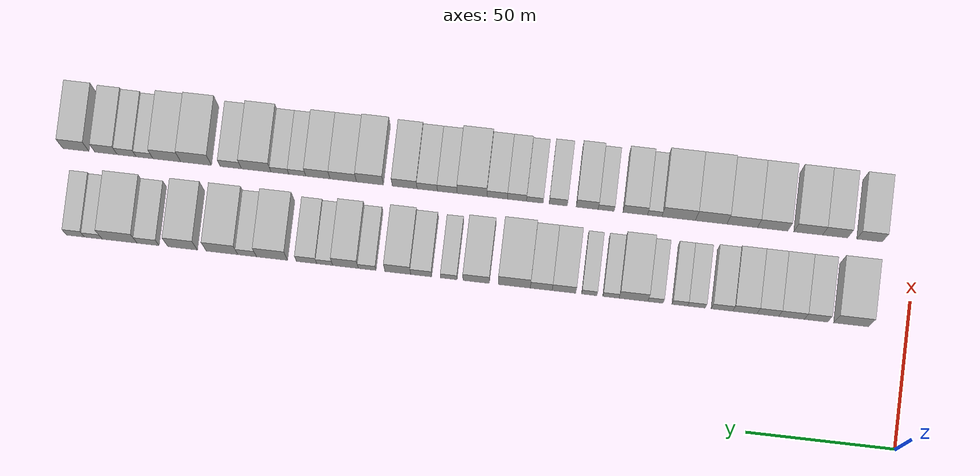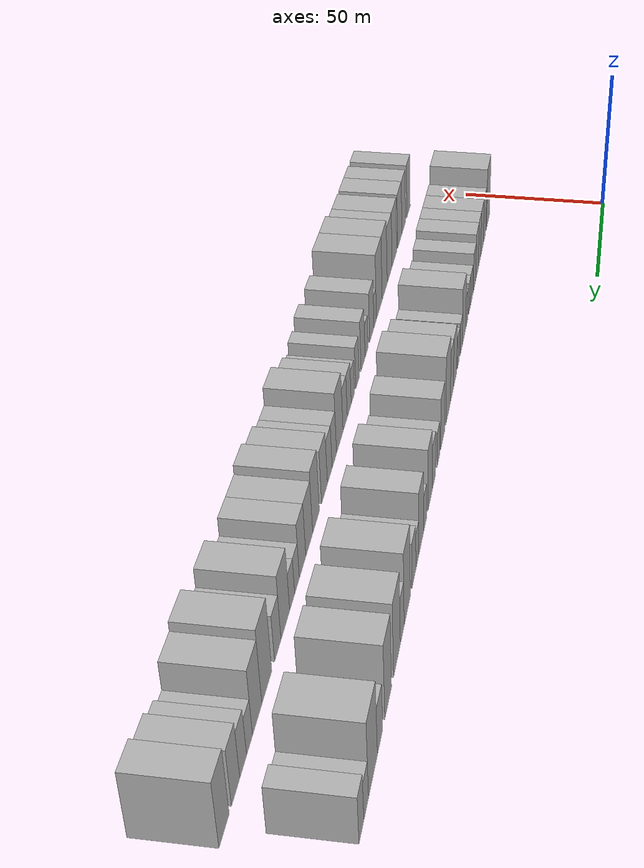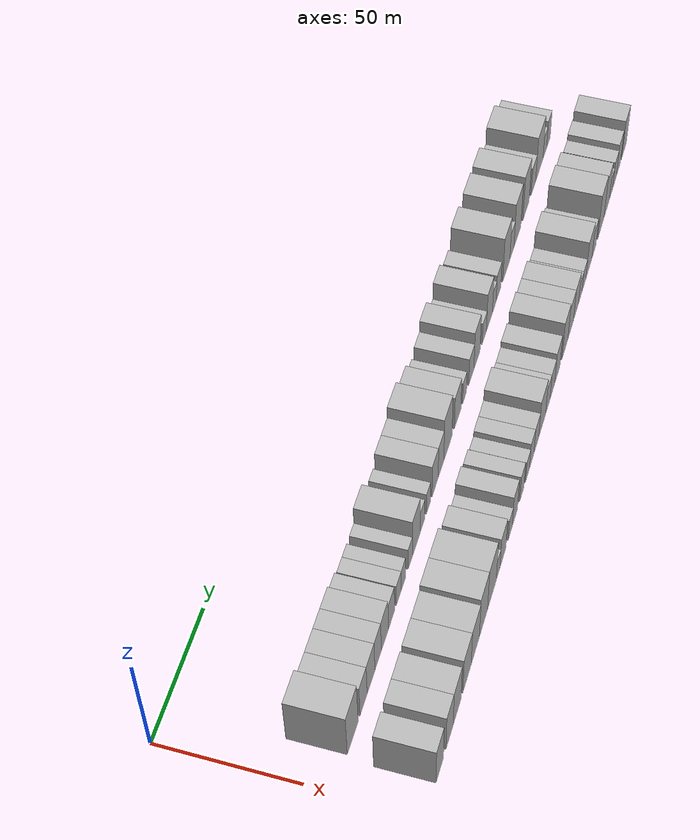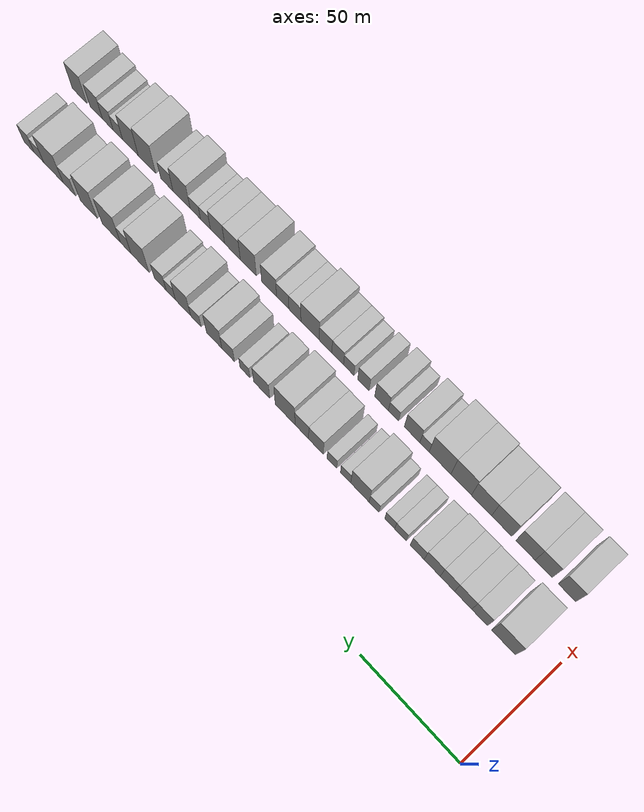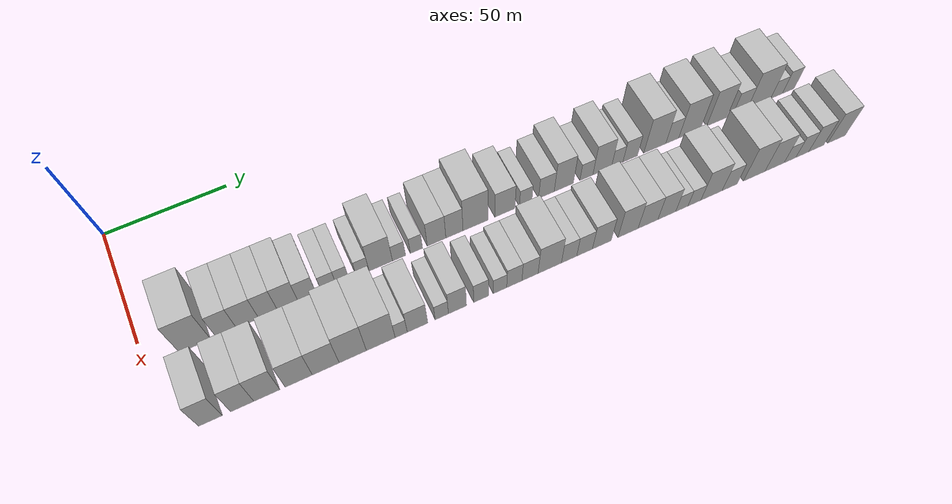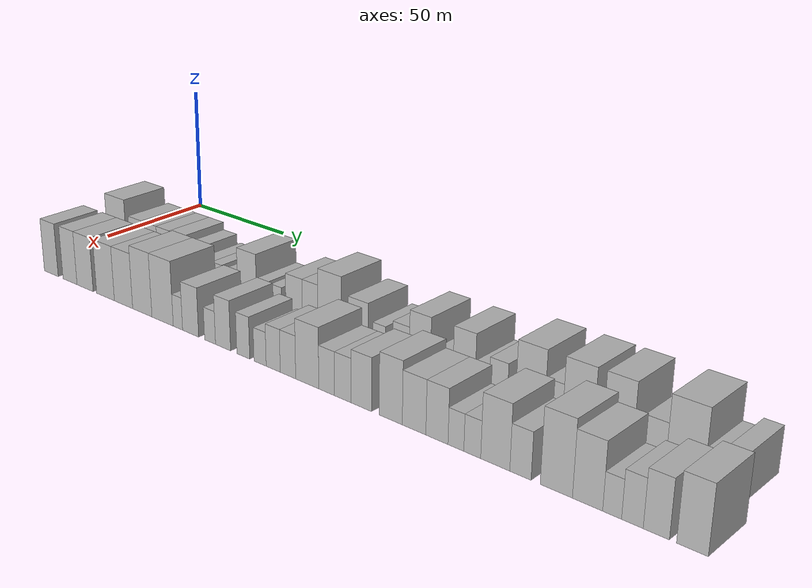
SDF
<sdf version="1.6">
 <world name="default">
  <model name="building_31">
   <static>1</static>
   <pose>50.0000 18.8961 0 0.000000 0.000000 0.000000</pose>
   <link name="link">
    <pose>0 0 12.00 0 0 0</pose>
    <collision name="collision"><geometry><box><size>20.0000 11.7647 24.0000</size></box></geometry></collision>
    <visual name="visual">
     <cast_shadows>0</cast_shadows>
     <geometry><box><size>20.0000 11.7647 24.0000</size></box></geometry>
     <material>
      <script>
       <uri>model://HANNAS_wall/materials/scripts</uri>
       <uri>model://HANNAS_wall/materials/textures</uri>
       <name>vrc/HANNAS_wall</name>
      </script>
     </material>
    </visual>
   </link>
  </model>
  <model name="building_32">
   <static>1</static>
   <pose>50.0000 30.7155 0 0.000000 0.000000 0.000000</pose>
   <link name="link">
    <pose>0 0 9.00 0 0 0</pose>
    <collision name="collision"><geometry><box><size>20.0000 7.8740 18.0000</size></box></geometry></collision>
    <visual name="visual">
     <cast_shadows>0</cast_shadows>
     <geometry><box><size>20.0000 7.8740 18.0000</size></box></geometry>
     <material>
      <script>
       <uri>model://HANNAS_wall/materials/scripts</uri>
       <uri>model://HANNAS_wall/materials/textures</uri>
       <name>vrc/HANNAS_wall</name>
      </script>
     </material>
    </visual>
   </link>
  </model>
  <model name="building_33">
   <static>1</static>
   <pose>50.0000 38.9766 0 0.000000 0.000000 0.000000</pose>
   <link name="link">
    <pose>0 0 9.00 0 0 0</pose>
    <collision name="collision"><geometry><box><size>20.0000 8.6483 18.0000</size></box></geometry></collision>
    <visual name="visual">
     <cast_shadows>0</cast_shadows>
     <geometry><box><size>20.0000 8.6483 18.0000</size></box></geometry>
     <material>
      <script>
       <uri>model://HANNAS_wall/materials/scripts</uri>
       <uri>model://HANNAS_wall/materials/textures</uri>
       <name>vrc/HANNAS_wall</name>
      </script>
     </material>
    </visual>
   </link>
  </model>
  <model name="building_34">
   <static>1</static>
   <pose>50.0000 46.9792 0 0.000000 0.000000 0.000000</pose>
   <link name="link">
    <pose>0 0 9.00 0 0 0</pose>
    <collision name="collision"><geometry><box><size>20.0000 7.3569 18.0000</size></box></geometry></collision>
    <visual name="visual">
     <cast_shadows>0</cast_shadows>
     <geometry><box><size>20.0000 7.3569 18.0000</size></box></geometry>
     <material>
      <script>
       <uri>model://HANNAS_wall/materials/scripts</uri>
       <uri>model://HANNAS_wall/materials/textures</uri>
       <name>vrc/HANNAS_wall</name>
      </script>
     </material>
    </visual>
   </link>
  </model>
  <model name="building_35">
   <static>1</static>
   <pose>50.0000 54.7420 0 0.000000 0.000000 0.000000</pose>
   <link name="link">
    <pose>0 0 9.00 0 0 0</pose>
    <collision name="collision"><geometry><box><size>20.0000 8.1687 18.0000</size></box></geometry></collision>
    <visual name="visual">
     <cast_shadows>0</cast_shadows>
     <geometry><box><size>20.0000 8.1687 18.0000</size></box></geometry>
     <material>
      <script>
       <uri>model://HANNAS_wall/materials/scripts</uri>
       <uri>model://HANNAS_wall/materials/textures</uri>
       <name>vrc/HANNAS_wall</name>
      </script>
     </material>
    </visual>
   </link>
  </model>
  <model name="building_36">
   <static>1</static>
   <pose>50.0000 62.4307 0 0.000000 0.000000 0.000000</pose>
   <link name="link">
    <pose>0 0 7.50 0 0 0</pose>
    <collision name="collision"><geometry><box><size>20.0000 7.2087 15.0000</size></box></geometry></collision>
    <visual name="visual">
     <cast_shadows>0</cast_shadows>
     <geometry><box><size>20.0000 7.2087 15.0000</size></box></geometry>
     <material>
      <script>
       <uri>model://HANNAS_wall/materials/scripts</uri>
       <uri>model://HANNAS_wall/materials/textures</uri>
       <name>vrc/HANNAS_wall</name>
      </script>
     </material>
    </visual>
   </link>
  </model>
  <model name="building_37">
   <static>1</static>
   <pose>50.0000 71.0295 0 0.000000 0.000000 0.000000</pose>
   <link name="link">
    <pose>0 0 6.00 0 0 0</pose>
    <collision name="collision"><geometry><box><size>20.0000 5.9889 12.0000</size></box></geometry></collision>
    <visual name="visual">
     <cast_shadows>0</cast_shadows>
     <geometry><box><size>20.0000 5.9889 12.0000</size></box></geometry>
     <material>
      <script>
       <uri>model://HANNAS_wall/materials/scripts</uri>
       <uri>model://HANNAS_wall/materials/textures</uri>
       <name>vrc/HANNAS_wall</name>
      </script>
     </material>
    </visual>
   </link>
  </model>
  <model name="building_38">
   <static>1</static>
   <pose>50.0000 76.6315 0 0.000000 0.000000 0.000000</pose>
   <link name="link">
    <pose>0 0 6.00 0 0 0</pose>
    <collision name="collision"><geometry><box><size>20.0000 5.2150 12.0000</size></box></geometry></collision>
    <visual name="visual">
     <cast_shadows>0</cast_shadows>
     <geometry><box><size>20.0000 5.2150 12.0000</size></box></geometry>
     <material>
      <script>
       <uri>model://HANNAS_wall/materials/scripts</uri>
       <uri>model://HANNAS_wall/materials/textures</uri>
       <name>vrc/HANNAS_wall</name>
      </script>
     </material>
    </visual>
   </link>
  </model>
  <model name="building_39">
   <static>1</static>
   <pose>50.0000 84.8282 0 0.000000 0.000000 0.000000</pose>
   <link name="link">
    <pose>0 0 6.00 0 0 0</pose>
    <collision name="collision"><geometry><box><size>20.0000 5.1785 12.0000</size></box></geometry></collision>
    <visual name="visual">
     <cast_shadows>0</cast_shadows>
     <geometry><box><size>20.0000 5.1785 12.0000</size></box></geometry>
     <material>
      <script>
       <uri>model://HANNAS_wall/materials/scripts</uri>
       <uri>model://HANNAS_wall/materials/textures</uri>
       <name>vrc/HANNAS_wall</name>
      </script>
     </material>
    </visual>
   </link>
  </model>
  <model name="building_40">
   <static>1</static>
   <pose>50.0000 92.2468 0 0.000000 0.000000 0.000000</pose>
   <link name="link">
    <pose>0 0 10.50 0 0 0</pose>
    <collision name="collision"><geometry><box><size>20.0000 9.6588 21.0000</size></box></geometry></collision>
    <visual name="visual">
     <cast_shadows>0</cast_shadows>
     <geometry><box><size>20.0000 9.6588 21.0000</size></box></geometry>
     <material>
      <script>
       <uri>model://HANNAS_wall/materials/scripts</uri>
       <uri>model://HANNAS_wall/materials/textures</uri>
       <name>vrc/HANNAS_wall</name>
      </script>
     </material>
    </visual>
   </link>
  </model>
  <model name="building_41">
   <static>1</static>
   <pose>50.0000 99.8060 0 0.000000 0.000000 0.000000</pose>
   <link name="link">
    <pose>0 0 6.00 0 0 0</pose>
    <collision name="collision"><geometry><box><size>20.0000 5.4595 12.0000</size></box></geometry></collision>
    <visual name="visual">
     <cast_shadows>0</cast_shadows>
     <geometry><box><size>20.0000 5.4595 12.0000</size></box></geometry>
     <material>
      <script>
       <uri>model://HANNAS_wall/materials/scripts</uri>
       <uri>model://HANNAS_wall/materials/textures</uri>
       <name>vrc/HANNAS_wall</name>
      </script>
     </material>
    </visual>
   </link>
  </model>
  <model name="building_42">
   <static>1</static>
   <pose>50.0000 107.1023 0 0.000000 0.000000 0.000000</pose>
   <link name="link">
    <pose>0 0 6.00 0 0 0</pose>
    <collision name="collision"><geometry><box><size>20.0000 5.1331 12.0000</size></box></geometry></collision>
    <visual name="visual">
     <cast_shadows>0</cast_shadows>
     <geometry><box><size>20.0000 5.1331 12.0000</size></box></geometry>
     <material>
      <script>
       <uri>model://HANNAS_wall/materials/scripts</uri>
       <uri>model://HANNAS_wall/materials/textures</uri>
       <name>vrc/HANNAS_wall</name>
      </script>
     </material>
    </visual>
   </link>
  </model>
  <model name="building_43">
   <static>1</static>
   <pose>50.0000 115.6307 0 0.000000 0.000000 0.000000</pose>
   <link name="link">
    <pose>0 0 9.00 0 0 0</pose>
    <collision name="collision"><geometry><box><size>20.0000 7.9236 18.0000</size></box></geometry></collision>
    <visual name="visual">
     <cast_shadows>0</cast_shadows>
     <geometry><box><size>20.0000 7.9236 18.0000</size></box></geometry>
     <material>
      <script>
       <uri>model://HANNAS_wall/materials/scripts</uri>
       <uri>model://HANNAS_wall/materials/textures</uri>
       <name>vrc/HANNAS_wall</name>
      </script>
     </material>
    </visual>
   </link>
  </model>
  <model name="building_44">
   <static>1</static>
   <pose>50.0000 123.2688 0 0.000000 0.000000 0.000000</pose>
   <link name="link">
    <pose>0 0 9.00 0 0 0</pose>
    <collision name="collision"><geometry><box><size>20.0000 7.3525 18.0000</size></box></geometry></collision>
    <visual name="visual">
     <cast_shadows>0</cast_shadows>
     <geometry><box><size>20.0000 7.3525 18.0000</size></box></geometry>
     <material>
      <script>
       <uri>model://HANNAS_wall/materials/scripts</uri>
       <uri>model://HANNAS_wall/materials/textures</uri>
       <name>vrc/HANNAS_wall</name>
      </script>
     </material>
    </visual>
   </link>
  </model>
  <model name="building_45">
   <static>1</static>
   <pose>50.0000 132.3559 0 0.000000 0.000000 0.000000</pose>
   <link name="link">
    <pose>0 0 12.00 0 0 0</pose>
    <collision name="collision"><geometry><box><size>20.0000 10.8218 24.0000</size></box></geometry></collision>
    <visual name="visual">
     <cast_shadows>0</cast_shadows>
     <geometry><box><size>20.0000 10.8218 24.0000</size></box></geometry>
     <material>
      <script>
       <uri>model://HANNAS_wall/materials/scripts</uri>
       <uri>model://HANNAS_wall/materials/textures</uri>
       <name>vrc/HANNAS_wall</name>
      </script>
     </material>
    </visual>
   </link>
  </model>
  <model name="building_46">
   <static>1</static>
   <pose>50.0000 145.2067 0 0.000000 0.000000 0.000000</pose>
   <link name="link">
    <pose>0 0 9.00 0 0 0</pose>
    <collision name="collision"><geometry><box><size>20.0000 8.8799 18.0000</size></box></geometry></collision>
    <visual name="visual">
     <cast_shadows>0</cast_shadows>
     <geometry><box><size>20.0000 8.8799 18.0000</size></box></geometry>
     <material>
      <script>
       <uri>model://HANNAS_wall/materials/scripts</uri>
       <uri>model://HANNAS_wall/materials/textures</uri>
       <name>vrc/HANNAS_wall</name>
      </script>
     </material>
    </visual>
   </link>
  </model>
  <model name="building_47">
   <static>1</static>
   <pose>50.0000 154.4307 0 0.000000 0.000000 0.000000</pose>
   <link name="link">
    <pose>0 0 6.00 0 0 0</pose>
    <collision name="collision"><geometry><box><size>20.0000 5.5680 12.0000</size></box></geometry></collision>
    <visual name="visual">
     <cast_shadows>0</cast_shadows>
     <geometry><box><size>20.0000 5.5680 12.0000</size></box></geometry>
     <material>
      <script>
       <uri>model://HANNAS_wall/materials/scripts</uri>
       <uri>model://HANNAS_wall/materials/textures</uri>
       <name>vrc/HANNAS_wall</name>
      </script>
     </material>
    </visual>
   </link>
  </model>
  <model name="building_48">
   <static>1</static>
   <pose>50.0000 163.7474 0 0.000000 0.000000 0.000000</pose>
   <link name="link">
    <pose>0 0 7.50 0 0 0</pose>
    <collision name="collision"><geometry><box><size>20.0000 7.0654 15.0000</size></box></geometry></collision>
    <visual name="visual">
     <cast_shadows>0</cast_shadows>
     <geometry><box><size>20.0000 7.0654 15.0000</size></box></geometry>
     <material>
      <script>
       <uri>model://HANNAS_wall/materials/scripts</uri>
       <uri>model://HANNAS_wall/materials/textures</uri>
       <name>vrc/HANNAS_wall</name>
      </script>
     </material>
    </visual>
   </link>
  </model>
  <model name="building_49">
   <static>1</static>
   <pose>50.0000 171.6320 0 0.000000 0.000000 0.000000</pose>
   <link name="link">
    <pose>0 0 10.50 0 0 0</pose>
    <collision name="collision"><geometry><box><size>20.0000 8.7038 21.0000</size></box></geometry></collision>
    <visual name="visual">
     <cast_shadows>0</cast_shadows>
     <geometry><box><size>20.0000 8.7038 21.0000</size></box></geometry>
     <material>
      <script>
       <uri>model://HANNAS_wall/materials/scripts</uri>
       <uri>model://HANNAS_wall/materials/textures</uri>
       <name>vrc/HANNAS_wall</name>
      </script>
     </material>
    </visual>
   </link>
  </model>
  <model name="building_50">
   <static>1</static>
   <pose>50.0000 181.9713 0 0.000000 0.000000 0.000000</pose>
   <link name="link">
    <pose>0 0 6.00 0 0 0</pose>
    <collision name="collision"><geometry><box><size>20.0000 5.9748 12.0000</size></box></geometry></collision>
    <visual name="visual">
     <cast_shadows>0</cast_shadows>
     <geometry><box><size>20.0000 5.9748 12.0000</size></box></geometry>
     <material>
      <script>
       <uri>model://HANNAS_wall/materials/scripts</uri>
       <uri>model://HANNAS_wall/materials/textures</uri>
       <name>vrc/HANNAS_wall</name>
      </script>
     </material>
    </visual>
   </link>
  </model>
  <model name="building_51">
   <static>1</static>
   <pose>50.0000 189.2815 0 0.000000 0.000000 0.000000</pose>
   <link name="link">
    <pose>0 0 10.50 0 0 0</pose>
    <collision name="collision"><geometry><box><size>20.0000 8.6455 21.0000</size></box></geometry></collision>
    <visual name="visual">
     <cast_shadows>0</cast_shadows>
     <geometry><box><size>20.0000 8.6455 21.0000</size></box></geometry>
     <material>
      <script>
       <uri>model://HANNAS_wall/materials/scripts</uri>
       <uri>model://HANNAS_wall/materials/textures</uri>
       <name>vrc/HANNAS_wall</name>
      </script>
     </material>
    </visual>
   </link>
  </model>
  <model name="building_52">
   <static>1</static>
   <pose>50.0000 196.2893 0 0.000000 0.000000 0.000000</pose>
   <link name="link">
    <pose>0 0 6.00 0 0 0</pose>
    <collision name="collision"><geometry><box><size>20.0000 5.3701 12.0000</size></box></geometry></collision>
    <visual name="visual">
     <cast_shadows>0</cast_shadows>
     <geometry><box><size>20.0000 5.3701 12.0000</size></box></geometry>
     <material>
      <script>
       <uri>model://HANNAS_wall/materials/scripts</uri>
       <uri>model://HANNAS_wall/materials/textures</uri>
       <name>vrc/HANNAS_wall</name>
      </script>
     </material>
    </visual>
   </link>
  </model>
  <model name="building_53">
   <static>1</static>
   <pose>50.0000 202.4150 0 0.000000 0.000000 0.000000</pose>
   <link name="link">
    <pose>0 0 7.50 0 0 0</pose>
    <collision name="collision"><geometry><box><size>20.0000 6.8814 15.0000</size></box></geometry></collision>
    <visual name="visual">
     <cast_shadows>0</cast_shadows>
     <geometry><box><size>20.0000 6.8814 15.0000</size></box></geometry>
     <material>
      <script>
       <uri>model://HANNAS_wall/materials/scripts</uri>
       <uri>model://HANNAS_wall/materials/textures</uri>
       <name>vrc/HANNAS_wall</name>
      </script>
     </material>
    </visual>
   </link>
  </model>
  <model name="building_54">
   <static>1</static>
   <pose>50.0000 214.1034 0 0.000000 0.000000 0.000000</pose>
   <link name="link">
    <pose>0 0 12.00 0 0 0</pose>
    <collision name="collision"><geometry><box><size>20.0000 10.4953 24.0000</size></box></geometry></collision>
    <visual name="visual">
     <cast_shadows>0</cast_shadows>
     <geometry><box><size>20.0000 10.4953 24.0000</size></box></geometry>
     <material>
      <script>
       <uri>model://HANNAS_wall/materials/scripts</uri>
       <uri>model://HANNAS_wall/materials/textures</uri>
       <name>vrc/HANNAS_wall</name>
      </script>
     </material>
    </visual>
   </link>
  </model>
  <model name="building_55">
   <static>1</static>
   <pose>50.0000 222.4942 0 0.000000 0.000000 0.000000</pose>
   <link name="link">
    <pose>0 0 7.50 0 0 0</pose>
    <collision name="collision"><geometry><box><size>20.0000 6.2863 15.0000</size></box></geometry></collision>
    <visual name="visual">
     <cast_shadows>0</cast_shadows>
     <geometry><box><size>20.0000 6.2863 15.0000</size></box></geometry>
     <material>
      <script>
       <uri>model://HANNAS_wall/materials/scripts</uri>
       <uri>model://HANNAS_wall/materials/textures</uri>
       <name>vrc/HANNAS_wall</name>
      </script>
     </material>
    </visual>
   </link>
  </model>
  <model name="building_56">
   <static>1</static>
   <pose>50.0000 230.9816 0 0.000000 0.000000 0.000000</pose>
   <link name="link">
    <pose>0 0 12.00 0 0 0</pose>
    <collision name="collision"><geometry><box><size>20.0000 10.6886 24.0000</size></box></geometry></collision>
    <visual name="visual">
     <cast_shadows>0</cast_shadows>
     <geometry><box><size>20.0000 10.6886 24.0000</size></box></geometry>
     <material>
      <script>
       <uri>model://HANNAS_wall/materials/scripts</uri>
       <uri>model://HANNAS_wall/materials/textures</uri>
       <name>vrc/HANNAS_wall</name>
      </script>
     </material>
    </visual>
   </link>
  </model>
  <model name="building_57">
   <static>1</static>
   <pose>50.0000 244.2992 0 0.000000 0.000000 0.000000</pose>
   <link name="link">
    <pose>0 0 12.00 0 0 0</pose>
    <collision name="collision"><geometry><box><size>20.0000 9.9465 24.0000</size></box></geometry></collision>
    <visual name="visual">
     <cast_shadows>0</cast_shadows>
     <geometry><box><size>20.0000 9.9465 24.0000</size></box></geometry>
     <material>
      <script>
       <uri>model://HANNAS_wall/materials/scripts</uri>
       <uri>model://HANNAS_wall/materials/textures</uri>
       <name>vrc/HANNAS_wall</name>
      </script>
     </material>
    </visual>
   </link>
  </model>
  <model name="building_58">
   <static>1</static>
   <pose>50.0000 255.9899 0 0.000000 0.000000 0.000000</pose>
   <link name="link">
    <pose>0 0 7.50 0 0 0</pose>
    <collision name="collision"><geometry><box><size>20.0000 7.4349 15.0000</size></box></geometry></collision>
    <visual name="visual">
     <cast_shadows>0</cast_shadows>
     <geometry><box><size>20.0000 7.4349 15.0000</size></box></geometry>
     <material>
      <script>
       <uri>model://HANNAS_wall/materials/scripts</uri>
       <uri>model://HANNAS_wall/materials/textures</uri>
       <name>vrc/HANNAS_wall</name>
      </script>
     </material>
    </visual>
   </link>
  </model>
  <model name="building_59">
   <static>1</static>
   <pose>50.0000 265.6036 0 0.000000 0.000000 0.000000</pose>
   <link name="link">
    <pose>0 0 12.00 0 0 0</pose>
    <collision name="collision"><geometry><box><size>20.0000 11.7926 24.0000</size></box></geometry></collision>
    <visual name="visual">
     <cast_shadows>0</cast_shadows>
     <geometry><box><size>20.0000 11.7926 24.0000</size></box></geometry>
     <material>
      <script>
       <uri>model://HANNAS_wall/materials/scripts</uri>
       <uri>model://HANNAS_wall/materials/textures</uri>
       <name>vrc/HANNAS_wall</name>
      </script>
     </material>
    </visual>
   </link>
  </model>
  <model name="building_60">
   <static>1</static>
   <pose>50.0000 274.4767 0 0.000000 0.000000 0.000000</pose>
   <link name="link">
    <pose>0 0 6.00 0 0 0</pose>
    <collision name="collision"><geometry><box><size>20.0000 5.9538 12.0000</size></box></geometry></collision>
    <visual name="visual">
     <cast_shadows>0</cast_shadows>
     <geometry><box><size>20.0000 5.9538 12.0000</size></box></geometry>
     <material>
      <script>
       <uri>model://HANNAS_wall/materials/scripts</uri>
       <uri>model://HANNAS_wall/materials/textures</uri>
       <name>vrc/HANNAS_wall</name>
      </script>
     </material>
    </visual>
   </link>
  </model>
  <model name="building_61">
   <static>1</static>
   <pose>50.0000 280.4903 0 0.000000 0.000000 0.000000</pose>
   <link name="link">
    <pose>0 0 7.50 0 0 0</pose>
    <collision name="collision"><geometry><box><size>20.0000 6.0734 15.0000</size></box></geometry></collision>
    <visual name="visual">
     <cast_shadows>0</cast_shadows>
     <geometry><box><size>20.0000 6.0734 15.0000</size></box></geometry>
     <material>
      <script>
       <uri>model://HANNAS_wall/materials/scripts</uri>
       <uri>model://HANNAS_wall/materials/textures</uri>
       <name>vrc/HANNAS_wall</name>
      </script>
     </material>
    </visual>
   </link>
  </model>
  <model name="building_95">
   <static>1</static>
   <pose>79.0000 15.6666 0 0.000000 0.000000 0.000000</pose>
   <link name="link">
    <pose>0 0 10.50 0 0 0</pose>
    <collision name="collision"><geometry><box><size>20.0000 8.6637 21.0000</size></box></geometry></collision>
    <visual name="visual">
     <cast_shadows>0</cast_shadows>
     <geometry><box><size>20.0000 8.6637 21.0000</size></box></geometry>
     <material>
      <script>
       <uri>model://HANNAS_wall/materials/scripts</uri>
       <uri>model://HANNAS_wall/materials/textures</uri>
       <name>vrc/HANNAS_wall</name>
      </script>
     </material>
    </visual>
   </link>
  </model>
  <model name="building_96">
   <static>1</static>
   <pose>79.0000 27.2757 0 0.000000 0.000000 0.000000</pose>
   <link name="link">
    <pose>0 0 10.50 0 0 0</pose>
    <collision name="collision"><geometry><box><size>20.0000 8.5546 21.0000</size></box></geometry></collision>
    <visual name="visual">
     <cast_shadows>0</cast_shadows>
     <geometry><box><size>20.0000 8.5546 21.0000</size></box></geometry>
     <material>
      <script>
       <uri>model://HANNAS_wall/materials/scripts</uri>
       <uri>model://HANNAS_wall/materials/textures</uri>
       <name>vrc/HANNAS_wall</name>
      </script>
     </material>
    </visual>
   </link>
  </model>
  <model name="building_97">
   <static>1</static>
   <pose>79.0000 36.4066 0 0.000000 0.000000 0.000000</pose>
   <link name="link">
    <pose>0 0 10.50 0 0 0</pose>
    <collision name="collision"><geometry><box><size>20.0000 9.7072 21.0000</size></box></geometry></collision>
    <visual name="visual">
     <cast_shadows>0</cast_shadows>
     <geometry><box><size>20.0000 9.7072 21.0000</size></box></geometry>
     <material>
      <script>
       <uri>model://HANNAS_wall/materials/scripts</uri>
       <uri>model://HANNAS_wall/materials/textures</uri>
       <name>vrc/HANNAS_wall</name>
      </script>
     </material>
    </visual>
   </link>
  </model>
  <model name="building_98">
   <static>1</static>
   <pose>79.0000 48.4131 0 0.000000 0.000000 0.000000</pose>
   <link name="link">
    <pose>0 0 10.50 0 0 0</pose>
    <collision name="collision"><geometry><box><size>20.0000 10.3059 21.0000</size></box></geometry></collision>
    <visual name="visual">
     <cast_shadows>0</cast_shadows>
     <geometry><box><size>20.0000 10.3059 21.0000</size></box></geometry>
     <material>
      <script>
       <uri>model://HANNAS_wall/materials/scripts</uri>
       <uri>model://HANNAS_wall/materials/textures</uri>
       <name>vrc/HANNAS_wall</name>
      </script>
     </material>
    </visual>
   </link>
  </model>
  <model name="building_99">
   <static>1</static>
   <pose>79.0000 58.7297 0 0.000000 0.000000 0.000000</pose>
   <link name="link">
    <pose>0 0 10.50 0 0 0</pose>
    <collision name="collision"><geometry><box><size>20.0000 10.3273 21.0000</size></box></geometry></collision>
    <visual name="visual">
     <cast_shadows>0</cast_shadows>
     <geometry><box><size>20.0000 10.3273 21.0000</size></box></geometry>
     <material>
      <script>
       <uri>model://HANNAS_wall/materials/scripts</uri>
       <uri>model://HANNAS_wall/materials/textures</uri>
       <name>vrc/HANNAS_wall</name>
      </script>
     </material>
    </visual>
   </link>
  </model>
  <model name="building_100">
   <static>1</static>
   <pose>79.0000 69.1917 0 0.000000 0.000000 0.000000</pose>
   <link name="link">
    <pose>0 0 12.00 0 0 0</pose>
    <collision name="collision"><geometry><box><size>20.0000 10.5965 24.0000</size></box></geometry></collision>
    <visual name="visual">
     <cast_shadows>0</cast_shadows>
     <geometry><box><size>20.0000 10.5965 24.0000</size></box></geometry>
     <material>
      <script>
       <uri>model://HANNAS_wall/materials/scripts</uri>
       <uri>model://HANNAS_wall/materials/textures</uri>
       <name>vrc/HANNAS_wall</name>
      </script>
     </material>
    </visual>
   </link>
  </model>
  <model name="building_101">
   <static>1</static>
   <pose>79.0000 80.1733 0 0.000000 0.000000 0.000000</pose>
   <link name="link">
    <pose>0 0 12.00 0 0 0</pose>
    <collision name="collision"><geometry><box><size>20.0000 11.3667 24.0000</size></box></geometry></collision>
    <visual name="visual">
     <cast_shadows>0</cast_shadows>
     <geometry><box><size>20.0000 11.3667 24.0000</size></box></geometry>
     <material>
      <script>
       <uri>model://HANNAS_wall/materials/scripts</uri>
       <uri>model://HANNAS_wall/materials/textures</uri>
       <name>vrc/HANNAS_wall</name>
      </script>
     </material>
    </visual>
   </link>
  </model>
  <model name="building_102">
   <static>1</static>
   <pose>79.0000 88.2821 0 0.000000 0.000000 0.000000</pose>
   <link name="link">
    <pose>0 0 6.00 0 0 0</pose>
    <collision name="collision"><geometry><box><size>20.0000 4.8510 12.0000</size></box></geometry></collision>
    <visual name="visual">
     <cast_shadows>0</cast_shadows>
     <geometry><box><size>20.0000 4.8510 12.0000</size></box></geometry>
     <material>
      <script>
       <uri>model://HANNAS_wall/materials/scripts</uri>
       <uri>model://HANNAS_wall/materials/textures</uri>
       <name>vrc/HANNAS_wall</name>
      </script>
     </material>
    </visual>
   </link>
  </model>
  <model name="building_103">
   <static>1</static>
   <pose>79.0000 94.8249 0 0.000000 0.000000 0.000000</pose>
   <link name="link">
    <pose>0 0 9.00 0 0 0</pose>
    <collision name="collision"><geometry><box><size>20.0000 8.2346 18.0000</size></box></geometry></collision>
    <visual name="visual">
     <cast_shadows>0</cast_shadows>
     <geometry><box><size>20.0000 8.2346 18.0000</size></box></geometry>
     <material>
      <script>
       <uri>model://HANNAS_wall/materials/scripts</uri>
       <uri>model://HANNAS_wall/materials/textures</uri>
       <name>vrc/HANNAS_wall</name>
      </script>
     </material>
    </visual>
   </link>
  </model>
  <model name="building_104">
   <static>1</static>
   <pose>79.0000 104.6497 0 0.000000 0.000000 0.000000</pose>
   <link name="link">
    <pose>0 0 6.00 0 0 0</pose>
    <collision name="collision"><geometry><box><size>20.0000 5.4151 12.0000</size></box></geometry></collision>
    <visual name="visual">
     <cast_shadows>0</cast_shadows>
     <geometry><box><size>20.0000 5.4151 12.0000</size></box></geometry>
     <material>
      <script>
       <uri>model://HANNAS_wall/materials/scripts</uri>
       <uri>model://HANNAS_wall/materials/textures</uri>
       <name>vrc/HANNAS_wall</name>
      </script>
     </material>
    </visual>
   </link>
  </model>
  <model name="building_105">
   <static>1</static>
   <pose>79.0000 111.0556 0 0.000000 0.000000 0.000000</pose>
   <link name="link">
    <pose>0 0 9.00 0 0 0</pose>
    <collision name="collision"><geometry><box><size>20.0000 7.3968 18.0000</size></box></geometry></collision>
    <visual name="visual">
     <cast_shadows>0</cast_shadows>
     <geometry><box><size>20.0000 7.3968 18.0000</size></box></geometry>
     <material>
      <script>
       <uri>model://HANNAS_wall/materials/scripts</uri>
       <uri>model://HANNAS_wall/materials/textures</uri>
       <name>vrc/HANNAS_wall</name>
      </script>
     </material>
    </visual>
   </link>
  </model>
  <model name="building_106">
   <static>1</static>
   <pose>79.0000 120.8247 0 0.000000 0.000000 0.000000</pose>
   <link name="link">
    <pose>0 0 7.50 0 0 0</pose>
    <collision name="collision"><geometry><box><size>20.0000 6.1414 15.0000</size></box></geometry></collision>
    <visual name="visual">
     <cast_shadows>0</cast_shadows>
     <geometry><box><size>20.0000 6.1414 15.0000</size></box></geometry>
     <material>
      <script>
       <uri>model://HANNAS_wall/materials/scripts</uri>
       <uri>model://HANNAS_wall/materials/textures</uri>
       <name>vrc/HANNAS_wall</name>
      </script>
     </material>
    </visual>
   </link>
  </model>
  <model name="building_107">
   <static>1</static>
   <pose>79.0000 128.7188 0 0.000000 0.000000 0.000000</pose>
   <link name="link">
    <pose>0 0 6.00 0 0 0</pose>
    <collision name="collision"><geometry><box><size>20.0000 5.6468 12.0000</size></box></geometry></collision>
    <visual name="visual">
     <cast_shadows>0</cast_shadows>
     <geometry><box><size>20.0000 5.6468 12.0000</size></box></geometry>
     <material>
      <script>
       <uri>model://HANNAS_wall/materials/scripts</uri>
       <uri>model://HANNAS_wall/materials/textures</uri>
       <name>vrc/HANNAS_wall</name>
      </script>
     </material>
    </visual>
   </link>
  </model>
  <model name="building_108">
   <static>1</static>
   <pose>79.0000 134.7577 0 0.000000 0.000000 0.000000</pose>
   <link name="link">
    <pose>0 0 7.50 0 0 0</pose>
    <collision name="collision"><geometry><box><size>20.0000 6.4308 15.0000</size></box></geometry></collision>
    <visual name="visual">
     <cast_shadows>0</cast_shadows>
     <geometry><box><size>20.0000 6.4308 15.0000</size></box></geometry>
     <material>
      <script>
       <uri>model://HANNAS_wall/materials/scripts</uri>
       <uri>model://HANNAS_wall/materials/textures</uri>
       <name>vrc/HANNAS_wall</name>
      </script>
     </material>
    </visual>
   </link>
  </model>
  <model name="building_109">
   <static>1</static>
   <pose>79.0000 141.4280 0 0.000000 0.000000 0.000000</pose>
   <link name="link">
    <pose>0 0 7.50 0 0 0</pose>
    <collision name="collision"><geometry><box><size>20.0000 6.9098 15.0000</size></box></geometry></collision>
    <visual name="visual">
     <cast_shadows>0</cast_shadows>
     <geometry><box><size>20.0000 6.9098 15.0000</size></box></geometry>
     <material>
      <script>
       <uri>model://HANNAS_wall/materials/scripts</uri>
       <uri>model://HANNAS_wall/materials/textures</uri>
       <name>vrc/HANNAS_wall</name>
      </script>
     </material>
    </visual>
   </link>
  </model>
  <model name="building_110">
   <static>1</static>
   <pose>79.0000 149.9287 0 0.000000 0.000000 0.000000</pose>
   <link name="link">
    <pose>0 0 10.50 0 0 0</pose>
    <collision name="collision"><geometry><box><size>20.0000 10.0917 21.0000</size></box></geometry></collision>
    <visual name="visual">
     <cast_shadows>0</cast_shadows>
     <geometry><box><size>20.0000 10.0917 21.0000</size></box></geometry>
     <material>
      <script>
       <uri>model://HANNAS_wall/materials/scripts</uri>
       <uri>model://HANNAS_wall/materials/textures</uri>
       <name>vrc/HANNAS_wall</name>
      </script>
     </material>
    </visual>
   </link>
  </model>
  <model name="building_111">
   <static>1</static>
   <pose>79.0000 158.3181 0 0.000000 0.000000 0.000000</pose>
   <link name="link">
    <pose>0 0 7.50 0 0 0</pose>
    <collision name="collision"><geometry><box><size>20.0000 6.6870 15.0000</size></box></geometry></collision>
    <visual name="visual">
     <cast_shadows>0</cast_shadows>
     <geometry><box><size>20.0000 6.6870 15.0000</size></box></geometry>
     <material>
      <script>
       <uri>model://HANNAS_wall/materials/scripts</uri>
       <uri>model://HANNAS_wall/materials/textures</uri>
       <name>vrc/HANNAS_wall</name>
      </script>
     </material>
    </visual>
   </link>
  </model>
  <model name="building_112">
   <static>1</static>
   <pose>79.0000 165.0982 0 0.000000 0.000000 0.000000</pose>
   <link name="link">
    <pose>0 0 7.50 0 0 0</pose>
    <collision name="collision"><geometry><box><size>20.0000 6.8733 15.0000</size></box></geometry></collision>
    <visual name="visual">
     <cast_shadows>0</cast_shadows>
     <geometry><box><size>20.0000 6.8733 15.0000</size></box></geometry>
     <material>
      <script>
       <uri>model://HANNAS_wall/materials/scripts</uri>
       <uri>model://HANNAS_wall/materials/textures</uri>
       <name>vrc/HANNAS_wall</name>
      </script>
     </material>
    </visual>
   </link>
  </model>
  <model name="building_113">
   <static>1</static>
   <pose>79.0000 172.7307 0 0.000000 0.000000 0.000000</pose>
   <link name="link">
    <pose>0 0 9.00 0 0 0</pose>
    <collision name="collision"><geometry><box><size>20.0000 8.3917 18.0000</size></box></geometry></collision>
    <visual name="visual">
     <cast_shadows>0</cast_shadows>
     <geometry><box><size>20.0000 8.3917 18.0000</size></box></geometry>
     <material>
      <script>
       <uri>model://HANNAS_wall/materials/scripts</uri>
       <uri>model://HANNAS_wall/materials/textures</uri>
       <name>vrc/HANNAS_wall</name>
      </script>
     </material>
    </visual>
   </link>
  </model>
  <model name="building_114">
   <static>1</static>
   <pose>79.0000 184.4705 0 0.000000 0.000000 0.000000</pose>
   <link name="link">
    <pose>0 0 10.50 0 0 0</pose>
    <collision name="collision"><geometry><box><size>20.0000 9.0880 21.0000</size></box></geometry></collision>
    <visual name="visual">
     <cast_shadows>0</cast_shadows>
     <geometry><box><size>20.0000 9.0880 21.0000</size></box></geometry>
     <material>
      <script>
       <uri>model://HANNAS_wall/materials/scripts</uri>
       <uri>model://HANNAS_wall/materials/textures</uri>
       <name>vrc/HANNAS_wall</name>
      </script>
     </material>
    </visual>
   </link>
  </model>
  <model name="building_115">
   <static>1</static>
   <pose>79.0000 193.5102 0 0.000000 0.000000 0.000000</pose>
   <link name="link">
    <pose>0 0 9.00 0 0 0</pose>
    <collision name="collision"><geometry><box><size>20.0000 8.9913 18.0000</size></box></geometry></collision>
    <visual name="visual">
     <cast_shadows>0</cast_shadows>
     <geometry><box><size>20.0000 8.9913 18.0000</size></box></geometry>
     <material>
      <script>
       <uri>model://HANNAS_wall/materials/scripts</uri>
       <uri>model://HANNAS_wall/materials/textures</uri>
       <name>vrc/HANNAS_wall</name>
      </script>
     </material>
    </visual>
   </link>
  </model>
  <model name="building_116">
   <static>1</static>
   <pose>79.0000 202.1089 0 0.000000 0.000000 0.000000</pose>
   <link name="link">
    <pose>0 0 9.00 0 0 0</pose>
    <collision name="collision"><geometry><box><size>20.0000 8.2061 18.0000</size></box></geometry></collision>
    <visual name="visual">
     <cast_shadows>0</cast_shadows>
     <geometry><box><size>20.0000 8.2061 18.0000</size></box></geometry>
     <material>
      <script>
       <uri>model://HANNAS_wall/materials/scripts</uri>
       <uri>model://HANNAS_wall/materials/textures</uri>
       <name>vrc/HANNAS_wall</name>
      </script>
     </material>
    </visual>
   </link>
  </model>
  <model name="building_117">
   <static>1</static>
   <pose>79.0000 209.0801 0 0.000000 0.000000 0.000000</pose>
   <link name="link">
    <pose>0 0 6.00 0 0 0</pose>
    <collision name="collision"><geometry><box><size>20.0000 5.7363 12.0000</size></box></geometry></collision>
    <visual name="visual">
     <cast_shadows>0</cast_shadows>
     <geometry><box><size>20.0000 5.7363 12.0000</size></box></geometry>
     <material>
      <script>
       <uri>model://HANNAS_wall/materials/scripts</uri>
       <uri>model://HANNAS_wall/materials/textures</uri>
       <name>vrc/HANNAS_wall</name>
      </script>
     </material>
    </visual>
   </link>
  </model>
  <model name="building_118">
   <static>1</static>
   <pose>79.0000 214.9446 0 0.000000 0.000000 0.000000</pose>
   <link name="link">
    <pose>0 0 6.00 0 0 0</pose>
    <collision name="collision"><geometry><box><size>20.0000 5.9926 12.0000</size></box></geometry></collision>
    <visual name="visual">
     <cast_shadows>0</cast_shadows>
     <geometry><box><size>20.0000 5.9926 12.0000</size></box></geometry>
     <material>
      <script>
       <uri>model://HANNAS_wall/materials/scripts</uri>
       <uri>model://HANNAS_wall/materials/textures</uri>
       <name>vrc/HANNAS_wall</name>
      </script>
     </material>
    </visual>
   </link>
  </model>
  <model name="building_119">
   <static>1</static>
   <pose>79.0000 222.9728 0 0.000000 0.000000 0.000000</pose>
   <link name="link">
    <pose>0 0 10.50 0 0 0</pose>
    <collision name="collision"><geometry><box><size>20.0000 10.0639 21.0000</size></box></geometry></collision>
    <visual name="visual">
     <cast_shadows>0</cast_shadows>
     <geometry><box><size>20.0000 10.0639 21.0000</size></box></geometry>
     <material>
      <script>
       <uri>model://HANNAS_wall/materials/scripts</uri>
       <uri>model://HANNAS_wall/materials/textures</uri>
       <name>vrc/HANNAS_wall</name>
      </script>
     </material>
    </visual>
   </link>
  </model>
  <model name="building_120">
   <static>1</static>
   <pose>79.0000 231.5859 0 0.000000 0.000000 0.000000</pose>
   <link name="link">
    <pose>0 0 7.50 0 0 0</pose>
    <collision name="collision"><geometry><box><size>20.0000 7.1623 15.0000</size></box></geometry></collision>
    <visual name="visual">
     <cast_shadows>0</cast_shadows>
     <geometry><box><size>20.0000 7.1623 15.0000</size></box></geometry>
     <material>
      <script>
       <uri>model://HANNAS_wall/materials/scripts</uri>
       <uri>model://HANNAS_wall/materials/textures</uri>
       <name>vrc/HANNAS_wall</name>
      </script>
     </material>
    </visual>
   </link>
  </model>
  <model name="building_121">
   <static>1</static>
   <pose>79.0000 243.3600 0 0.000000 0.000000 0.000000</pose>
   <link name="link">
    <pose>0 0 12.00 0 0 0</pose>
    <collision name="collision"><geometry><box><size>20.0000 10.3858 24.0000</size></box></geometry></collision>
    <visual name="visual">
     <cast_shadows>0</cast_shadows>
     <geometry><box><size>20.0000 10.3858 24.0000</size></box></geometry>
     <material>
      <script>
       <uri>model://HANNAS_wall/materials/scripts</uri>
       <uri>model://HANNAS_wall/materials/textures</uri>
       <name>vrc/HANNAS_wall</name>
      </script>
     </material>
    </visual>
   </link>
  </model>
  <model name="building_122">
   <static>1</static>
   <pose>79.0000 253.2601 0 0.000000 0.000000 0.000000</pose>
   <link name="link">
    <pose>0 0 10.50 0 0 0</pose>
    <collision name="collision"><geometry><box><size>20.0000 9.4143 21.0000</size></box></geometry></collision>
    <visual name="visual">
     <cast_shadows>0</cast_shadows>
     <geometry><box><size>20.0000 9.4143 21.0000</size></box></geometry>
     <material>
      <script>
       <uri>model://HANNAS_wall/materials/scripts</uri>
       <uri>model://HANNAS_wall/materials/textures</uri>
       <name>vrc/HANNAS_wall</name>
      </script>
     </material>
    </visual>
   </link>
  </model>
  <model name="building_123">
   <static>1</static>
   <pose>79.0000 260.8297 0 0.000000 0.000000 0.000000</pose>
   <link name="link">
    <pose>0 0 6.00 0 0 0</pose>
    <collision name="collision"><geometry><box><size>20.0000 5.7249 12.0000</size></box></geometry></collision>
    <visual name="visual">
     <cast_shadows>0</cast_shadows>
     <geometry><box><size>20.0000 5.7249 12.0000</size></box></geometry>
     <material>
      <script>
       <uri>model://HANNAS_wall/materials/scripts</uri>
       <uri>model://HANNAS_wall/materials/textures</uri>
       <name>vrc/HANNAS_wall</name>
      </script>
     </material>
    </visual>
   </link>
  </model>
  <model name="building_124">
   <static>1</static>
   <pose>79.0000 266.8994 0 0.000000 0.000000 0.000000</pose>
   <link name="link">
    <pose>0 0 7.50 0 0 0</pose>
    <collision name="collision"><geometry><box><size>20.0000 6.4145 15.0000</size></box></geometry></collision>
    <visual name="visual">
     <cast_shadows>0</cast_shadows>
     <geometry><box><size>20.0000 6.4145 15.0000</size></box></geometry>
     <material>
      <script>
       <uri>model://HANNAS_wall/materials/scripts</uri>
       <uri>model://HANNAS_wall/materials/textures</uri>
       <name>vrc/HANNAS_wall</name>
      </script>
     </material>
    </visual>
   </link>
  </model>
  <model name="building_125">
   <static>1</static>
   <pose>79.0000 273.9022 0 0.000000 0.000000 0.000000</pose>
   <link name="link">
    <pose>0 0 9.00 0 0 0</pose>
    <collision name="collision"><geometry><box><size>20.0000 7.5910 18.0000</size></box></geometry></collision>
    <visual name="visual">
     <cast_shadows>0</cast_shadows>
     <geometry><box><size>20.0000 7.5910 18.0000</size></box></geometry>
     <material>
      <script>
       <uri>model://HANNAS_wall/materials/scripts</uri>
       <uri>model://HANNAS_wall/materials/textures</uri>
       <name>vrc/HANNAS_wall</name>
      </script>
     </material>
    </visual>
   </link>
  </model>
  <model name="building_126">
   <static>1</static>
   <pose>79.0000 284.1303 0 0.000000 0.000000 0.000000</pose>
   <link name="link">
    <pose>0 0 10.50 0 0 0</pose>
    <collision name="collision"><geometry><box><size>20.0000 8.8652 21.0000</size></box></geometry></collision>
    <visual name="visual">
     <cast_shadows>0</cast_shadows>
     <geometry><box><size>20.0000 8.8652 21.0000</size></box></geometry>
     <material>
      <script>
       <uri>model://HANNAS_wall/materials/scripts</uri>
       <uri>model://HANNAS_wall/materials/textures</uri>
       <name>vrc/HANNAS_wall</name>
      </script>
     </material>
    </visual>
   </link>
  </model>
 </world>
</sdf>
